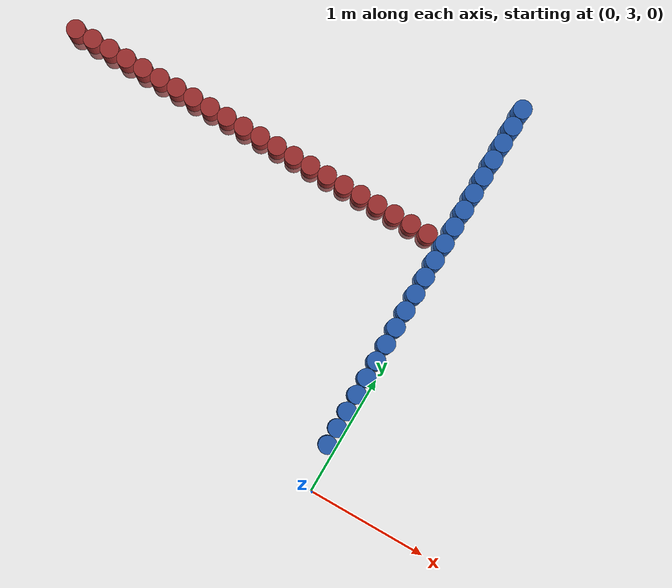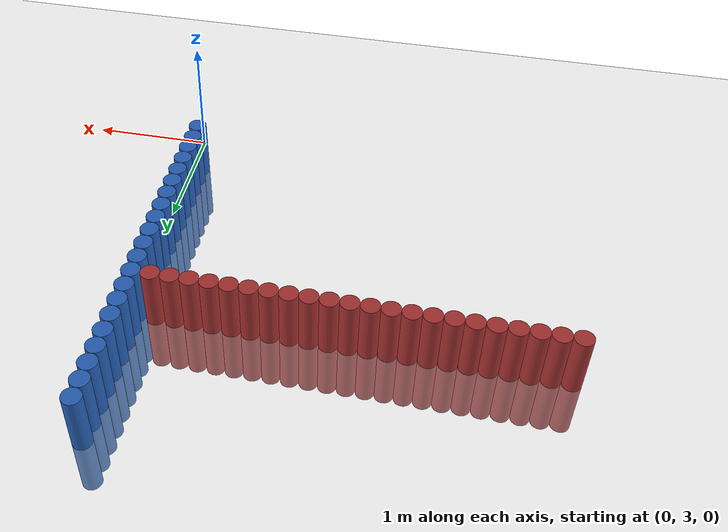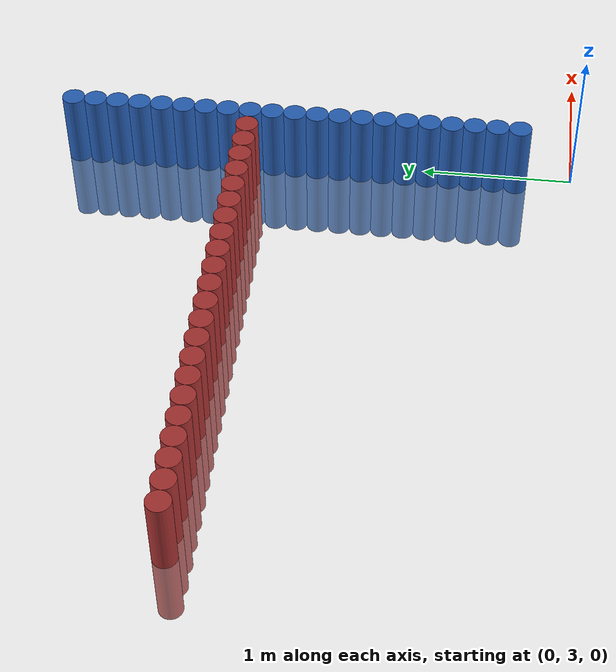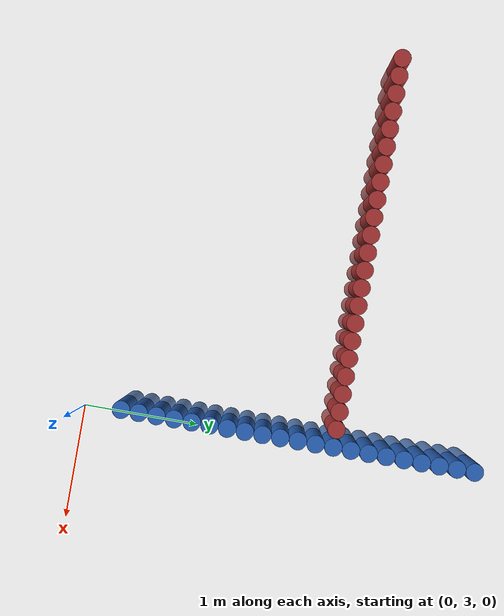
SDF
<sdf version="1.6">
 <world name="default">
  <model name="ground_plane">
   <static>1</static>
   <link name="link">
    <collision name="collision">
     <geometry><plane><normal>0 0 1</normal><size>100 100</size></plane></geometry>
     <surface><friction><ode><mu>100</mu><mu2>50</mu2></ode></friction></surface>
    </collision>
    <visual name="visual">
     <cast_shadows>0</cast_shadows>
     <geometry><plane><normal>0 0 1</normal><size>100 100</size></plane></geometry>
     <material>
      <script><uri>file://media/materials/scripts/gazebo.material</uri><name>Gazebo/Grey</name></script>
     </material>
    </visual>
   </link>
  </model>
  <model name="unit_cylinder_101">
   <static>1</static>
   <pose>-0.075000 3.375000 0.000000 0.000000 0.000000 0.000000</pose>
   <link name="link">
    <inertial>
     <mass>1</mass>
     <inertia><ixx>0.145833</ixx><ixy>0</ixy><ixz>0</ixz><iyy>0.145833</iyy><iyz>0</iyz><izz>0.125</izz></inertia>
    </inertial>
    <collision name="collision">
     <geometry><cylinder><radius>0.075000</radius><length>1</length></cylinder></geometry>
    </collision>
    <visual name="visual">
     <geometry><cylinder><radius>0.075000</radius><length>1</length></cylinder></geometry>
     <material>
      <ambient>0.152000 0.379000 0.720000 1</ambient>
      <diffuse>0.152000 0.379000 0.720000 1</diffuse>
     </material>
     <material>
      <script><name>Gazebo/Grey</name><uri>file://media/materials/scripts/gazebo.material</uri></script>
     </material>
    </visual>
   </link>
  </model>
  <model name="unit_cylinder_103">
   <static>1</static>
   <pose>-0.075000 3.525000 0.000000 0.000000 0.000000 0.000000</pose>
   <link name="link">
    <inertial>
     <mass>1</mass>
     <inertia><ixx>0.145833</ixx><ixy>0</ixy><ixz>0</ixz><iyy>0.145833</iyy><iyz>0</iyz><izz>0.125</izz></inertia>
    </inertial>
    <collision name="collision">
     <geometry><cylinder><radius>0.075000</radius><length>1</length></cylinder></geometry>
    </collision>
    <visual name="visual">
     <geometry><cylinder><radius>0.075000</radius><length>1</length></cylinder></geometry>
     <material>
      <ambient>0.152000 0.379000 0.720000 1</ambient>
      <diffuse>0.152000 0.379000 0.720000 1</diffuse>
     </material>
     <material>
      <script><name>Gazebo/Grey</name><uri>file://media/materials/scripts/gazebo.material</uri></script>
     </material>
    </visual>
   </link>
  </model>
  <model name="unit_cylinder_105">
   <static>1</static>
   <pose>-0.075000 3.675000 0.000000 0.000000 0.000000 0.000000</pose>
   <link name="link">
    <inertial>
     <mass>1</mass>
     <inertia><ixx>0.145833</ixx><ixy>0</ixy><ixz>0</ixz><iyy>0.145833</iyy><iyz>0</iyz><izz>0.125</izz></inertia>
    </inertial>
    <collision name="collision">
     <geometry><cylinder><radius>0.075000</radius><length>1</length></cylinder></geometry>
    </collision>
    <visual name="visual">
     <geometry><cylinder><radius>0.075000</radius><length>1</length></cylinder></geometry>
     <material>
      <ambient>0.152000 0.379000 0.720000 1</ambient>
      <diffuse>0.152000 0.379000 0.720000 1</diffuse>
     </material>
     <material>
      <script><name>Gazebo/Grey</name><uri>file://media/materials/scripts/gazebo.material</uri></script>
     </material>
    </visual>
   </link>
  </model>
  <model name="unit_cylinder_107">
   <static>1</static>
   <pose>-0.075000 3.825000 0.000000 0.000000 0.000000 0.000000</pose>
   <link name="link">
    <inertial>
     <mass>1</mass>
     <inertia><ixx>0.145833</ixx><ixy>0</ixy><ixz>0</ixz><iyy>0.145833</iyy><iyz>0</iyz><izz>0.125</izz></inertia>
    </inertial>
    <collision name="collision">
     <geometry><cylinder><radius>0.075000</radius><length>1</length></cylinder></geometry>
    </collision>
    <visual name="visual">
     <geometry><cylinder><radius>0.075000</radius><length>1</length></cylinder></geometry>
     <material>
      <ambient>0.152000 0.379000 0.720000 1</ambient>
      <diffuse>0.152000 0.379000 0.720000 1</diffuse>
     </material>
     <material>
      <script><name>Gazebo/Grey</name><uri>file://media/materials/scripts/gazebo.material</uri></script>
     </material>
    </visual>
   </link>
  </model>
  <model name="unit_cylinder_109">
   <static>1</static>
   <pose>-0.075000 3.975000 0.000000 0.000000 0.000000 0.000000</pose>
   <link name="link">
    <inertial>
     <mass>1</mass>
     <inertia><ixx>0.145833</ixx><ixy>0</ixy><ixz>0</ixz><iyy>0.145833</iyy><iyz>0</iyz><izz>0.125</izz></inertia>
    </inertial>
    <collision name="collision">
     <geometry><cylinder><radius>0.075000</radius><length>1</length></cylinder></geometry>
    </collision>
    <visual name="visual">
     <geometry><cylinder><radius>0.075000</radius><length>1</length></cylinder></geometry>
     <material>
      <ambient>0.152000 0.379000 0.720000 1</ambient>
      <diffuse>0.152000 0.379000 0.720000 1</diffuse>
     </material>
     <material>
      <script><name>Gazebo/Grey</name><uri>file://media/materials/scripts/gazebo.material</uri></script>
     </material>
    </visual>
   </link>
  </model>
  <model name="unit_cylinder_111">
   <static>1</static>
   <pose>-0.075000 4.125000 0.000000 0.000000 0.000000 0.000000</pose>
   <link name="link">
    <inertial>
     <mass>1</mass>
     <inertia><ixx>0.145833</ixx><ixy>0</ixy><ixz>0</ixz><iyy>0.145833</iyy><iyz>0</iyz><izz>0.125</izz></inertia>
    </inertial>
    <collision name="collision">
     <geometry><cylinder><radius>0.075000</radius><length>1</length></cylinder></geometry>
    </collision>
    <visual name="visual">
     <geometry><cylinder><radius>0.075000</radius><length>1</length></cylinder></geometry>
     <material>
      <ambient>0.152000 0.379000 0.720000 1</ambient>
      <diffuse>0.152000 0.379000 0.720000 1</diffuse>
     </material>
     <material>
      <script><name>Gazebo/Grey</name><uri>file://media/materials/scripts/gazebo.material</uri></script>
     </material>
    </visual>
   </link>
  </model>
  <model name="unit_cylinder_113">
   <static>1</static>
   <pose>-0.075000 4.275000 0.000000 0.000000 0.000000 0.000000</pose>
   <link name="link">
    <inertial>
     <mass>1</mass>
     <inertia><ixx>0.145833</ixx><ixy>0</ixy><ixz>0</ixz><iyy>0.145833</iyy><iyz>0</iyz><izz>0.125</izz></inertia>
    </inertial>
    <collision name="collision">
     <geometry><cylinder><radius>0.075000</radius><length>1</length></cylinder></geometry>
    </collision>
    <visual name="visual">
     <geometry><cylinder><radius>0.075000</radius><length>1</length></cylinder></geometry>
     <material>
      <ambient>0.152000 0.379000 0.720000 1</ambient>
      <diffuse>0.152000 0.379000 0.720000 1</diffuse>
     </material>
     <material>
      <script><name>Gazebo/Grey</name><uri>file://media/materials/scripts/gazebo.material</uri></script>
     </material>
    </visual>
   </link>
  </model>
  <model name="unit_cylinder_115">
   <static>1</static>
   <pose>-0.075000 4.425000 0.000000 0.000000 0.000000 0.000000</pose>
   <link name="link">
    <inertial>
     <mass>1</mass>
     <inertia><ixx>0.145833</ixx><ixy>0</ixy><ixz>0</ixz><iyy>0.145833</iyy><iyz>0</iyz><izz>0.125</izz></inertia>
    </inertial>
    <collision name="collision">
     <geometry><cylinder><radius>0.075000</radius><length>1</length></cylinder></geometry>
    </collision>
    <visual name="visual">
     <geometry><cylinder><radius>0.075000</radius><length>1</length></cylinder></geometry>
     <material>
      <ambient>0.152000 0.379000 0.720000 1</ambient>
      <diffuse>0.152000 0.379000 0.720000 1</diffuse>
     </material>
     <material>
      <script><name>Gazebo/Grey</name><uri>file://media/materials/scripts/gazebo.material</uri></script>
     </material>
    </visual>
   </link>
  </model>
  <model name="unit_cylinder_117">
   <static>1</static>
   <pose>-0.075000 4.575000 0.000000 0.000000 0.000000 0.000000</pose>
   <link name="link">
    <inertial>
     <mass>1</mass>
     <inertia><ixx>0.145833</ixx><ixy>0</ixy><ixz>0</ixz><iyy>0.145833</iyy><iyz>0</iyz><izz>0.125</izz></inertia>
    </inertial>
    <collision name="collision">
     <geometry><cylinder><radius>0.075000</radius><length>1</length></cylinder></geometry>
    </collision>
    <visual name="visual">
     <geometry><cylinder><radius>0.075000</radius><length>1</length></cylinder></geometry>
     <material>
      <ambient>0.152000 0.379000 0.720000 1</ambient>
      <diffuse>0.152000 0.379000 0.720000 1</diffuse>
     </material>
     <material>
      <script><name>Gazebo/Grey</name><uri>file://media/materials/scripts/gazebo.material</uri></script>
     </material>
    </visual>
   </link>
  </model>
  <model name="unit_cylinder_119">
   <static>1</static>
   <pose>-0.075000 4.725000 0.000000 0.000000 0.000000 0.000000</pose>
   <link name="link">
    <inertial>
     <mass>1</mass>
     <inertia><ixx>0.145833</ixx><ixy>0</ixy><ixz>0</ixz><iyy>0.145833</iyy><iyz>0</iyz><izz>0.125</izz></inertia>
    </inertial>
    <collision name="collision">
     <geometry><cylinder><radius>0.075000</radius><length>1</length></cylinder></geometry>
    </collision>
    <visual name="visual">
     <geometry><cylinder><radius>0.075000</radius><length>1</length></cylinder></geometry>
     <material>
      <ambient>0.152000 0.379000 0.720000 1</ambient>
      <diffuse>0.152000 0.379000 0.720000 1</diffuse>
     </material>
     <material>
      <script><name>Gazebo/Grey</name><uri>file://media/materials/scripts/gazebo.material</uri></script>
     </material>
    </visual>
   </link>
  </model>
  <model name="unit_cylinder_121">
   <static>1</static>
   <pose>-0.075000 4.875000 0.000000 0.000000 0.000000 0.000000</pose>
   <link name="link">
    <inertial>
     <mass>1</mass>
     <inertia><ixx>0.145833</ixx><ixy>0</ixy><ixz>0</ixz><iyy>0.145833</iyy><iyz>0</iyz><izz>0.125</izz></inertia>
    </inertial>
    <collision name="collision">
     <geometry><cylinder><radius>0.075000</radius><length>1</length></cylinder></geometry>
    </collision>
    <visual name="visual">
     <geometry><cylinder><radius>0.075000</radius><length>1</length></cylinder></geometry>
     <material>
      <ambient>0.152000 0.379000 0.720000 1</ambient>
      <diffuse>0.152000 0.379000 0.720000 1</diffuse>
     </material>
     <material>
      <script><name>Gazebo/Grey</name><uri>file://media/materials/scripts/gazebo.material</uri></script>
     </material>
    </visual>
   </link>
  </model>
  <model name="unit_cylinder_123">
   <static>1</static>
   <pose>-0.075000 5.025000 0.000000 0.000000 0.000000 0.000000</pose>
   <link name="link">
    <inertial>
     <mass>1</mass>
     <inertia><ixx>0.145833</ixx><ixy>0</ixy><ixz>0</ixz><iyy>0.145833</iyy><iyz>0</iyz><izz>0.125</izz></inertia>
    </inertial>
    <collision name="collision">
     <geometry><cylinder><radius>0.075000</radius><length>1</length></cylinder></geometry>
    </collision>
    <visual name="visual">
     <geometry><cylinder><radius>0.075000</radius><length>1</length></cylinder></geometry>
     <material>
      <ambient>0.152000 0.379000 0.720000 1</ambient>
      <diffuse>0.152000 0.379000 0.720000 1</diffuse>
     </material>
     <material>
      <script><name>Gazebo/Grey</name><uri>file://media/materials/scripts/gazebo.material</uri></script>
     </material>
    </visual>
   </link>
  </model>
  <model name="unit_cylinder_363">
   <static>1</static>
   <pose>-3.375000 5.175000 0.000000 0.000000 0.000000 0.000000</pose>
   <link name="link">
    <inertial>
     <mass>1</mass>
     <inertia><ixx>0.145833</ixx><ixy>0</ixy><ixz>0</ixz><iyy>0.145833</iyy><iyz>0</iyz><izz>0.125</izz></inertia>
    </inertial>
    <collision name="collision">
     <geometry><cylinder><radius>0.075000</radius><length>1</length></cylinder></geometry>
    </collision>
    <visual name="visual">
     <geometry><cylinder><radius>0.075000</radius><length>1</length></cylinder></geometry>
     <material>
      <ambient>0.648000 0.192000 0.192000 1</ambient>
      <diffuse>0.648000 0.192000 0.192000 1</diffuse>
     </material>
     <material>
      <script><name>Gazebo/Grey</name><uri>file://media/materials/scripts/gazebo.material</uri></script>
     </material>
    </visual>
   </link>
  </model>
  <model name="unit_cylinder_365">
   <static>1</static>
   <pose>-3.225000 5.175000 0.000000 0.000000 0.000000 0.000000</pose>
   <link name="link">
    <inertial>
     <mass>1</mass>
     <inertia><ixx>0.145833</ixx><ixy>0</ixy><ixz>0</ixz><iyy>0.145833</iyy><iyz>0</iyz><izz>0.125</izz></inertia>
    </inertial>
    <collision name="collision">
     <geometry><cylinder><radius>0.075000</radius><length>1</length></cylinder></geometry>
    </collision>
    <visual name="visual">
     <geometry><cylinder><radius>0.075000</radius><length>1</length></cylinder></geometry>
     <material>
      <ambient>0.648000 0.192000 0.192000 1</ambient>
      <diffuse>0.648000 0.192000 0.192000 1</diffuse>
     </material>
     <material>
      <script><name>Gazebo/Grey</name><uri>file://media/materials/scripts/gazebo.material</uri></script>
     </material>
    </visual>
   </link>
  </model>
  <model name="unit_cylinder_367">
   <static>1</static>
   <pose>-3.075000 5.175000 0.000000 0.000000 0.000000 0.000000</pose>
   <link name="link">
    <inertial>
     <mass>1</mass>
     <inertia><ixx>0.145833</ixx><ixy>0</ixy><ixz>0</ixz><iyy>0.145833</iyy><iyz>0</iyz><izz>0.125</izz></inertia>
    </inertial>
    <collision name="collision">
     <geometry><cylinder><radius>0.075000</radius><length>1</length></cylinder></geometry>
    </collision>
    <visual name="visual">
     <geometry><cylinder><radius>0.075000</radius><length>1</length></cylinder></geometry>
     <material>
      <ambient>0.648000 0.192000 0.192000 1</ambient>
      <diffuse>0.648000 0.192000 0.192000 1</diffuse>
     </material>
     <material>
      <script><name>Gazebo/Grey</name><uri>file://media/materials/scripts/gazebo.material</uri></script>
     </material>
    </visual>
   </link>
  </model>
  <model name="unit_cylinder_369">
   <static>1</static>
   <pose>-2.925000 5.175000 0.000000 0.000000 0.000000 0.000000</pose>
   <link name="link">
    <inertial>
     <mass>1</mass>
     <inertia><ixx>0.145833</ixx><ixy>0</ixy><ixz>0</ixz><iyy>0.145833</iyy><iyz>0</iyz><izz>0.125</izz></inertia>
    </inertial>
    <collision name="collision">
     <geometry><cylinder><radius>0.075000</radius><length>1</length></cylinder></geometry>
    </collision>
    <visual name="visual">
     <geometry><cylinder><radius>0.075000</radius><length>1</length></cylinder></geometry>
     <material>
      <ambient>0.648000 0.192000 0.192000 1</ambient>
      <diffuse>0.648000 0.192000 0.192000 1</diffuse>
     </material>
     <material>
      <script><name>Gazebo/Grey</name><uri>file://media/materials/scripts/gazebo.material</uri></script>
     </material>
    </visual>
   </link>
  </model>
  <model name="unit_cylinder_371">
   <static>1</static>
   <pose>-2.775000 5.175000 0.000000 0.000000 0.000000 0.000000</pose>
   <link name="link">
    <inertial>
     <mass>1</mass>
     <inertia><ixx>0.145833</ixx><ixy>0</ixy><ixz>0</ixz><iyy>0.145833</iyy><iyz>0</iyz><izz>0.125</izz></inertia>
    </inertial>
    <collision name="collision">
     <geometry><cylinder><radius>0.075000</radius><length>1</length></cylinder></geometry>
    </collision>
    <visual name="visual">
     <geometry><cylinder><radius>0.075000</radius><length>1</length></cylinder></geometry>
     <material>
      <ambient>0.648000 0.192000 0.192000 1</ambient>
      <diffuse>0.648000 0.192000 0.192000 1</diffuse>
     </material>
     <material>
      <script><name>Gazebo/Grey</name><uri>file://media/materials/scripts/gazebo.material</uri></script>
     </material>
    </visual>
   </link>
  </model>
  <model name="unit_cylinder_373">
   <static>1</static>
   <pose>-2.625000 5.175000 0.000000 0.000000 0.000000 0.000000</pose>
   <link name="link">
    <inertial>
     <mass>1</mass>
     <inertia><ixx>0.145833</ixx><ixy>0</ixy><ixz>0</ixz><iyy>0.145833</iyy><iyz>0</iyz><izz>0.125</izz></inertia>
    </inertial>
    <collision name="collision">
     <geometry><cylinder><radius>0.075000</radius><length>1</length></cylinder></geometry>
    </collision>
    <visual name="visual">
     <geometry><cylinder><radius>0.075000</radius><length>1</length></cylinder></geometry>
     <material>
      <ambient>0.648000 0.192000 0.192000 1</ambient>
      <diffuse>0.648000 0.192000 0.192000 1</diffuse>
     </material>
     <material>
      <script><name>Gazebo/Grey</name><uri>file://media/materials/scripts/gazebo.material</uri></script>
     </material>
    </visual>
   </link>
  </model>
  <model name="unit_cylinder_375">
   <static>1</static>
   <pose>-2.475000 5.175000 0.000000 0.000000 0.000000 0.000000</pose>
   <link name="link">
    <inertial>
     <mass>1</mass>
     <inertia><ixx>0.145833</ixx><ixy>0</ixy><ixz>0</ixz><iyy>0.145833</iyy><iyz>0</iyz><izz>0.125</izz></inertia>
    </inertial>
    <collision name="collision">
     <geometry><cylinder><radius>0.075000</radius><length>1</length></cylinder></geometry>
    </collision>
    <visual name="visual">
     <geometry><cylinder><radius>0.075000</radius><length>1</length></cylinder></geometry>
     <material>
      <ambient>0.648000 0.192000 0.192000 1</ambient>
      <diffuse>0.648000 0.192000 0.192000 1</diffuse>
     </material>
     <material>
      <script><name>Gazebo/Grey</name><uri>file://media/materials/scripts/gazebo.material</uri></script>
     </material>
    </visual>
   </link>
  </model>
  <model name="unit_cylinder_377">
   <static>1</static>
   <pose>-2.325000 5.175000 0.000000 0.000000 0.000000 0.000000</pose>
   <link name="link">
    <inertial>
     <mass>1</mass>
     <inertia><ixx>0.145833</ixx><ixy>0</ixy><ixz>0</ixz><iyy>0.145833</iyy><iyz>0</iyz><izz>0.125</izz></inertia>
    </inertial>
    <collision name="collision">
     <geometry><cylinder><radius>0.075000</radius><length>1</length></cylinder></geometry>
    </collision>
    <visual name="visual">
     <geometry><cylinder><radius>0.075000</radius><length>1</length></cylinder></geometry>
     <material>
      <ambient>0.648000 0.192000 0.192000 1</ambient>
      <diffuse>0.648000 0.192000 0.192000 1</diffuse>
     </material>
     <material>
      <script><name>Gazebo/Grey</name><uri>file://media/materials/scripts/gazebo.material</uri></script>
     </material>
    </visual>
   </link>
  </model>
  <model name="unit_cylinder_379">
   <static>1</static>
   <pose>-2.175000 5.175000 0.000000 0.000000 0.000000 0.000000</pose>
   <link name="link">
    <inertial>
     <mass>1</mass>
     <inertia><ixx>0.145833</ixx><ixy>0</ixy><ixz>0</ixz><iyy>0.145833</iyy><iyz>0</iyz><izz>0.125</izz></inertia>
    </inertial>
    <collision name="collision">
     <geometry><cylinder><radius>0.075000</radius><length>1</length></cylinder></geometry>
    </collision>
    <visual name="visual">
     <geometry><cylinder><radius>0.075000</radius><length>1</length></cylinder></geometry>
     <material>
      <ambient>0.648000 0.192000 0.192000 1</ambient>
      <diffuse>0.648000 0.192000 0.192000 1</diffuse>
     </material>
     <material>
      <script><name>Gazebo/Grey</name><uri>file://media/materials/scripts/gazebo.material</uri></script>
     </material>
    </visual>
   </link>
  </model>
  <model name="unit_cylinder_381">
   <static>1</static>
   <pose>-2.025000 5.175000 0.000000 0.000000 0.000000 0.000000</pose>
   <link name="link">
    <inertial>
     <mass>1</mass>
     <inertia><ixx>0.145833</ixx><ixy>0</ixy><ixz>0</ixz><iyy>0.145833</iyy><iyz>0</iyz><izz>0.125</izz></inertia>
    </inertial>
    <collision name="collision">
     <geometry><cylinder><radius>0.075000</radius><length>1</length></cylinder></geometry>
    </collision>
    <visual name="visual">
     <geometry><cylinder><radius>0.075000</radius><length>1</length></cylinder></geometry>
     <material>
      <ambient>0.648000 0.192000 0.192000 1</ambient>
      <diffuse>0.648000 0.192000 0.192000 1</diffuse>
     </material>
     <material>
      <script><name>Gazebo/Grey</name><uri>file://media/materials/scripts/gazebo.material</uri></script>
     </material>
    </visual>
   </link>
  </model>
  <model name="unit_cylinder_383">
   <static>1</static>
   <pose>-1.875000 5.175000 0.000000 0.000000 0.000000 0.000000</pose>
   <link name="link">
    <inertial>
     <mass>1</mass>
     <inertia><ixx>0.145833</ixx><ixy>0</ixy><ixz>0</ixz><iyy>0.145833</iyy><iyz>0</iyz><izz>0.125</izz></inertia>
    </inertial>
    <collision name="collision">
     <geometry><cylinder><radius>0.075000</radius><length>1</length></cylinder></geometry>
    </collision>
    <visual name="visual">
     <geometry><cylinder><radius>0.075000</radius><length>1</length></cylinder></geometry>
     <material>
      <ambient>0.648000 0.192000 0.192000 1</ambient>
      <diffuse>0.648000 0.192000 0.192000 1</diffuse>
     </material>
     <material>
      <script><name>Gazebo/Grey</name><uri>file://media/materials/scripts/gazebo.material</uri></script>
     </material>
    </visual>
   </link>
  </model>
  <model name="unit_cylinder_385">
   <static>1</static>
   <pose>-1.725000 5.175000 0.000000 0.000000 0.000000 0.000000</pose>
   <link name="link">
    <inertial>
     <mass>1</mass>
     <inertia><ixx>0.145833</ixx><ixy>0</ixy><ixz>0</ixz><iyy>0.145833</iyy><iyz>0</iyz><izz>0.125</izz></inertia>
    </inertial>
    <collision name="collision">
     <geometry><cylinder><radius>0.075000</radius><length>1</length></cylinder></geometry>
    </collision>
    <visual name="visual">
     <geometry><cylinder><radius>0.075000</radius><length>1</length></cylinder></geometry>
     <material>
      <ambient>0.648000 0.192000 0.192000 1</ambient>
      <diffuse>0.648000 0.192000 0.192000 1</diffuse>
     </material>
     <material>
      <script><name>Gazebo/Grey</name><uri>file://media/materials/scripts/gazebo.material</uri></script>
     </material>
    </visual>
   </link>
  </model>
  <model name="unit_cylinder_387">
   <static>1</static>
   <pose>-1.575000 5.175000 0.000000 0.000000 0.000000 0.000000</pose>
   <link name="link">
    <inertial>
     <mass>1</mass>
     <inertia><ixx>0.145833</ixx><ixy>0</ixy><ixz>0</ixz><iyy>0.145833</iyy><iyz>0</iyz><izz>0.125</izz></inertia>
    </inertial>
    <collision name="collision">
     <geometry><cylinder><radius>0.075000</radius><length>1</length></cylinder></geometry>
    </collision>
    <visual name="visual">
     <geometry><cylinder><radius>0.075000</radius><length>1</length></cylinder></geometry>
     <material>
      <ambient>0.648000 0.192000 0.192000 1</ambient>
      <diffuse>0.648000 0.192000 0.192000 1</diffuse>
     </material>
     <material>
      <script><name>Gazebo/Grey</name><uri>file://media/materials/scripts/gazebo.material</uri></script>
     </material>
    </visual>
   </link>
  </model>
  <model name="unit_cylinder_389">
   <static>1</static>
   <pose>-1.425000 5.175000 0.000000 0.000000 0.000000 0.000000</pose>
   <link name="link">
    <inertial>
     <mass>1</mass>
     <inertia><ixx>0.145833</ixx><ixy>0</ixy><ixz>0</ixz><iyy>0.145833</iyy><iyz>0</iyz><izz>0.125</izz></inertia>
    </inertial>
    <collision name="collision">
     <geometry><cylinder><radius>0.075000</radius><length>1</length></cylinder></geometry>
    </collision>
    <visual name="visual">
     <geometry><cylinder><radius>0.075000</radius><length>1</length></cylinder></geometry>
     <material>
      <ambient>0.648000 0.192000 0.192000 1</ambient>
      <diffuse>0.648000 0.192000 0.192000 1</diffuse>
     </material>
     <material>
      <script><name>Gazebo/Grey</name><uri>file://media/materials/scripts/gazebo.material</uri></script>
     </material>
    </visual>
   </link>
  </model>
  <model name="unit_cylinder_391">
   <static>1</static>
   <pose>-1.275000 5.175000 0.000000 0.000000 0.000000 0.000000</pose>
   <link name="link">
    <inertial>
     <mass>1</mass>
     <inertia><ixx>0.145833</ixx><ixy>0</ixy><ixz>0</ixz><iyy>0.145833</iyy><iyz>0</iyz><izz>0.125</izz></inertia>
    </inertial>
    <collision name="collision">
     <geometry><cylinder><radius>0.075000</radius><length>1</length></cylinder></geometry>
    </collision>
    <visual name="visual">
     <geometry><cylinder><radius>0.075000</radius><length>1</length></cylinder></geometry>
     <material>
      <ambient>0.648000 0.192000 0.192000 1</ambient>
      <diffuse>0.648000 0.192000 0.192000 1</diffuse>
     </material>
     <material>
      <script><name>Gazebo/Grey</name><uri>file://media/materials/scripts/gazebo.material</uri></script>
     </material>
    </visual>
   </link>
  </model>
  <model name="unit_cylinder_393">
   <static>1</static>
   <pose>-1.125000 5.175000 0.000000 0.000000 0.000000 0.000000</pose>
   <link name="link">
    <inertial>
     <mass>1</mass>
     <inertia><ixx>0.145833</ixx><ixy>0</ixy><ixz>0</ixz><iyy>0.145833</iyy><iyz>0</iyz><izz>0.125</izz></inertia>
    </inertial>
    <collision name="collision">
     <geometry><cylinder><radius>0.075000</radius><length>1</length></cylinder></geometry>
    </collision>
    <visual name="visual">
     <geometry><cylinder><radius>0.075000</radius><length>1</length></cylinder></geometry>
     <material>
      <ambient>0.648000 0.192000 0.192000 1</ambient>
      <diffuse>0.648000 0.192000 0.192000 1</diffuse>
     </material>
     <material>
      <script><name>Gazebo/Grey</name><uri>file://media/materials/scripts/gazebo.material</uri></script>
     </material>
    </visual>
   </link>
  </model>
  <model name="unit_cylinder_395">
   <static>1</static>
   <pose>-0.975000 5.175000 0.000000 0.000000 0.000000 0.000000</pose>
   <link name="link">
    <inertial>
     <mass>1</mass>
     <inertia><ixx>0.145833</ixx><ixy>0</ixy><ixz>0</ixz><iyy>0.145833</iyy><iyz>0</iyz><izz>0.125</izz></inertia>
    </inertial>
    <collision name="collision">
     <geometry><cylinder><radius>0.075000</radius><length>1</length></cylinder></geometry>
    </collision>
    <visual name="visual">
     <geometry><cylinder><radius>0.075000</radius><length>1</length></cylinder></geometry>
     <material>
      <ambient>0.648000 0.192000 0.192000 1</ambient>
      <diffuse>0.648000 0.192000 0.192000 1</diffuse>
     </material>
     <material>
      <script><name>Gazebo/Grey</name><uri>file://media/materials/scripts/gazebo.material</uri></script>
     </material>
    </visual>
   </link>
  </model>
  <model name="unit_cylinder_397">
   <static>1</static>
   <pose>-0.825000 5.175000 0.000000 0.000000 0.000000 0.000000</pose>
   <link name="link">
    <inertial>
     <mass>1</mass>
     <inertia><ixx>0.145833</ixx><ixy>0</ixy><ixz>0</ixz><iyy>0.145833</iyy><iyz>0</iyz><izz>0.125</izz></inertia>
    </inertial>
    <collision name="collision">
     <geometry><cylinder><radius>0.075000</radius><length>1</length></cylinder></geometry>
    </collision>
    <visual name="visual">
     <geometry><cylinder><radius>0.075000</radius><length>1</length></cylinder></geometry>
     <material>
      <ambient>0.648000 0.192000 0.192000 1</ambient>
      <diffuse>0.648000 0.192000 0.192000 1</diffuse>
     </material>
     <material>
      <script><name>Gazebo/Grey</name><uri>file://media/materials/scripts/gazebo.material</uri></script>
     </material>
    </visual>
   </link>
  </model>
  <model name="unit_cylinder_399">
   <static>1</static>
   <pose>-0.675000 5.175000 0.000000 0.000000 0.000000 0.000000</pose>
   <link name="link">
    <inertial>
     <mass>1</mass>
     <inertia><ixx>0.145833</ixx><ixy>0</ixy><ixz>0</ixz><iyy>0.145833</iyy><iyz>0</iyz><izz>0.125</izz></inertia>
    </inertial>
    <collision name="collision">
     <geometry><cylinder><radius>0.075000</radius><length>1</length></cylinder></geometry>
    </collision>
    <visual name="visual">
     <geometry><cylinder><radius>0.075000</radius><length>1</length></cylinder></geometry>
     <material>
      <ambient>0.648000 0.192000 0.192000 1</ambient>
      <diffuse>0.648000 0.192000 0.192000 1</diffuse>
     </material>
     <material>
      <script><name>Gazebo/Grey</name><uri>file://media/materials/scripts/gazebo.material</uri></script>
     </material>
    </visual>
   </link>
  </model>
  <model name="unit_cylinder_401">
   <static>1</static>
   <pose>-0.525000 5.175000 0.000000 0.000000 0.000000 0.000000</pose>
   <link name="link">
    <inertial>
     <mass>1</mass>
     <inertia><ixx>0.145833</ixx><ixy>0</ixy><ixz>0</ixz><iyy>0.145833</iyy><iyz>0</iyz><izz>0.125</izz></inertia>
    </inertial>
    <collision name="collision">
     <geometry><cylinder><radius>0.075000</radius><length>1</length></cylinder></geometry>
    </collision>
    <visual name="visual">
     <geometry><cylinder><radius>0.075000</radius><length>1</length></cylinder></geometry>
     <material>
      <ambient>0.648000 0.192000 0.192000 1</ambient>
      <diffuse>0.648000 0.192000 0.192000 1</diffuse>
     </material>
     <material>
      <script><name>Gazebo/Grey</name><uri>file://media/materials/scripts/gazebo.material</uri></script>
     </material>
    </visual>
   </link>
  </model>
  <model name="unit_cylinder_403">
   <static>1</static>
   <pose>-0.375000 5.175000 0.000000 0.000000 0.000000 0.000000</pose>
   <link name="link">
    <inertial>
     <mass>1</mass>
     <inertia><ixx>0.145833</ixx><ixy>0</ixy><ixz>0</ixz><iyy>0.145833</iyy><iyz>0</iyz><izz>0.125</izz></inertia>
    </inertial>
    <collision name="collision">
     <geometry><cylinder><radius>0.075000</radius><length>1</length></cylinder></geometry>
    </collision>
    <visual name="visual">
     <geometry><cylinder><radius>0.075000</radius><length>1</length></cylinder></geometry>
     <material>
      <ambient>0.648000 0.192000 0.192000 1</ambient>
      <diffuse>0.648000 0.192000 0.192000 1</diffuse>
     </material>
     <material>
      <script><name>Gazebo/Grey</name><uri>file://media/materials/scripts/gazebo.material</uri></script>
     </material>
    </visual>
   </link>
  </model>
  <model name="unit_cylinder_405">
   <static>1</static>
   <pose>-0.225000 5.175000 0.000000 0.000000 0.000000 0.000000</pose>
   <link name="link">
    <inertial>
     <mass>1</mass>
     <inertia><ixx>0.145833</ixx><ixy>0</ixy><ixz>0</ixz><iyy>0.145833</iyy><iyz>0</iyz><izz>0.125</izz></inertia>
    </inertial>
    <collision name="collision">
     <geometry><cylinder><radius>0.075000</radius><length>1</length></cylinder></geometry>
    </collision>
    <visual name="visual">
     <geometry><cylinder><radius>0.075000</radius><length>1</length></cylinder></geometry>
     <material>
      <ambient>0.648000 0.192000 0.192000 1</ambient>
      <diffuse>0.648000 0.192000 0.192000 1</diffuse>
     </material>
     <material>
      <script><name>Gazebo/Grey</name><uri>file://media/materials/scripts/gazebo.material</uri></script>
     </material>
    </visual>
   </link>
  </model>
  <model name="unit_cylinder_407">
   <static>1</static>
   <pose>-0.075000 5.175000 0.000000 0.000000 0.000000 0.000000</pose>
   <link name="link">
    <inertial>
     <mass>1</mass>
     <inertia><ixx>0.145833</ixx><ixy>0</ixy><ixz>0</ixz><iyy>0.145833</iyy><iyz>0</iyz><izz>0.125</izz></inertia>
    </inertial>
    <collision name="collision">
     <geometry><cylinder><radius>0.075000</radius><length>1</length></cylinder></geometry>
    </collision>
    <visual name="visual">
     <geometry><cylinder><radius>0.075000</radius><length>1</length></cylinder></geometry>
     <material>
      <ambient>0.152000 0.379000 0.720000 1</ambient>
      <diffuse>0.152000 0.379000 0.720000 1</diffuse>
     </material>
     <material>
      <script><name>Gazebo/Grey</name><uri>file://media/materials/scripts/gazebo.material</uri></script>
     </material>
    </visual>
   </link>
  </model>
  <model name="unit_cylinder_408">
   <static>1</static>
   <pose>-0.075000 5.325000 0.000000 0.000000 0.000000 0.000000</pose>
   <link name="link">
    <inertial>
     <mass>1</mass>
     <inertia><ixx>0.145833</ixx><ixy>0</ixy><ixz>0</ixz><iyy>0.145833</iyy><iyz>0</iyz><izz>0.125</izz></inertia>
    </inertial>
    <collision name="collision">
     <geometry><cylinder><radius>0.075000</radius><length>1</length></cylinder></geometry>
    </collision>
    <visual name="visual">
     <geometry><cylinder><radius>0.075000</radius><length>1</length></cylinder></geometry>
     <material>
      <ambient>0.152000 0.379000 0.720000 1</ambient>
      <diffuse>0.152000 0.379000 0.720000 1</diffuse>
     </material>
     <material>
      <script><name>Gazebo/Grey</name><uri>file://media/materials/scripts/gazebo.material</uri></script>
     </material>
    </visual>
   </link>
  </model>
  <model name="unit_cylinder_409">
   <static>1</static>
   <pose>-0.075000 5.475000 0.000000 0.000000 0.000000 0.000000</pose>
   <link name="link">
    <inertial>
     <mass>1</mass>
     <inertia><ixx>0.145833</ixx><ixy>0</ixy><ixz>0</ixz><iyy>0.145833</iyy><iyz>0</iyz><izz>0.125</izz></inertia>
    </inertial>
    <collision name="collision">
     <geometry><cylinder><radius>0.075000</radius><length>1</length></cylinder></geometry>
    </collision>
    <visual name="visual">
     <geometry><cylinder><radius>0.075000</radius><length>1</length></cylinder></geometry>
     <material>
      <ambient>0.152000 0.379000 0.720000 1</ambient>
      <diffuse>0.152000 0.379000 0.720000 1</diffuse>
     </material>
     <material>
      <script><name>Gazebo/Grey</name><uri>file://media/materials/scripts/gazebo.material</uri></script>
     </material>
    </visual>
   </link>
  </model>
  <model name="unit_cylinder_410">
   <static>1</static>
   <pose>-0.075000 5.625000 0.000000 0.000000 0.000000 0.000000</pose>
   <link name="link">
    <inertial>
     <mass>1</mass>
     <inertia><ixx>0.145833</ixx><ixy>0</ixy><ixz>0</ixz><iyy>0.145833</iyy><iyz>0</iyz><izz>0.125</izz></inertia>
    </inertial>
    <collision name="collision">
     <geometry><cylinder><radius>0.075000</radius><length>1</length></cylinder></geometry>
    </collision>
    <visual name="visual">
     <geometry><cylinder><radius>0.075000</radius><length>1</length></cylinder></geometry>
     <material>
      <ambient>0.152000 0.379000 0.720000 1</ambient>
      <diffuse>0.152000 0.379000 0.720000 1</diffuse>
     </material>
     <material>
      <script><name>Gazebo/Grey</name><uri>file://media/materials/scripts/gazebo.material</uri></script>
     </material>
    </visual>
   </link>
  </model>
  <model name="unit_cylinder_411">
   <static>1</static>
   <pose>-0.075000 5.775000 0.000000 0.000000 0.000000 0.000000</pose>
   <link name="link">
    <inertial>
     <mass>1</mass>
     <inertia><ixx>0.145833</ixx><ixy>0</ixy><ixz>0</ixz><iyy>0.145833</iyy><iyz>0</iyz><izz>0.125</izz></inertia>
    </inertial>
    <collision name="collision">
     <geometry><cylinder><radius>0.075000</radius><length>1</length></cylinder></geometry>
    </collision>
    <visual name="visual">
     <geometry><cylinder><radius>0.075000</radius><length>1</length></cylinder></geometry>
     <material>
      <ambient>0.152000 0.379000 0.720000 1</ambient>
      <diffuse>0.152000 0.379000 0.720000 1</diffuse>
     </material>
     <material>
      <script><name>Gazebo/Grey</name><uri>file://media/materials/scripts/gazebo.material</uri></script>
     </material>
    </visual>
   </link>
  </model>
  <model name="unit_cylinder_412">
   <static>1</static>
   <pose>-0.075000 5.925000 0.000000 0.000000 0.000000 0.000000</pose>
   <link name="link">
    <inertial>
     <mass>1</mass>
     <inertia><ixx>0.145833</ixx><ixy>0</ixy><ixz>0</ixz><iyy>0.145833</iyy><iyz>0</iyz><izz>0.125</izz></inertia>
    </inertial>
    <collision name="collision">
     <geometry><cylinder><radius>0.075000</radius><length>1</length></cylinder></geometry>
    </collision>
    <visual name="visual">
     <geometry><cylinder><radius>0.075000</radius><length>1</length></cylinder></geometry>
     <material>
      <ambient>0.152000 0.379000 0.720000 1</ambient>
      <diffuse>0.152000 0.379000 0.720000 1</diffuse>
     </material>
     <material>
      <script><name>Gazebo/Grey</name><uri>file://media/materials/scripts/gazebo.material</uri></script>
     </material>
    </visual>
   </link>
  </model>
  <model name="unit_cylinder_413">
   <static>1</static>
   <pose>-0.075000 6.075000 0.000000 0.000000 0.000000 0.000000</pose>
   <link name="link">
    <inertial>
     <mass>1</mass>
     <inertia><ixx>0.145833</ixx><ixy>0</ixy><ixz>0</ixz><iyy>0.145833</iyy><iyz>0</iyz><izz>0.125</izz></inertia>
    </inertial>
    <collision name="collision">
     <geometry><cylinder><radius>0.075000</radius><length>1</length></cylinder></geometry>
    </collision>
    <visual name="visual">
     <geometry><cylinder><radius>0.075000</radius><length>1</length></cylinder></geometry>
     <material>
      <ambient>0.152000 0.379000 0.720000 1</ambient>
      <diffuse>0.152000 0.379000 0.720000 1</diffuse>
     </material>
     <material>
      <script><name>Gazebo/Grey</name><uri>file://media/materials/scripts/gazebo.material</uri></script>
     </material>
    </visual>
   </link>
  </model>
  <model name="unit_cylinder_414">
   <static>1</static>
   <pose>-0.075000 6.225000 0.000000 0.000000 0.000000 0.000000</pose>
   <link name="link">
    <inertial>
     <mass>1</mass>
     <inertia><ixx>0.145833</ixx><ixy>0</ixy><ixz>0</ixz><iyy>0.145833</iyy><iyz>0</iyz><izz>0.125</izz></inertia>
    </inertial>
    <collision name="collision">
     <geometry><cylinder><radius>0.075000</radius><length>1</length></cylinder></geometry>
    </collision>
    <visual name="visual">
     <geometry><cylinder><radius>0.075000</radius><length>1</length></cylinder></geometry>
     <material>
      <ambient>0.152000 0.379000 0.720000 1</ambient>
      <diffuse>0.152000 0.379000 0.720000 1</diffuse>
     </material>
     <material>
      <script><name>Gazebo/Grey</name><uri>file://media/materials/scripts/gazebo.material</uri></script>
     </material>
    </visual>
   </link>
  </model>
  <model name="unit_cylinder_415">
   <static>1</static>
   <pose>-0.075000 6.375000 0.000000 0.000000 0.000000 0.000000</pose>
   <link name="link">
    <inertial>
     <mass>1</mass>
     <inertia><ixx>0.145833</ixx><ixy>0</ixy><ixz>0</ixz><iyy>0.145833</iyy><iyz>0</iyz><izz>0.125</izz></inertia>
    </inertial>
    <collision name="collision">
     <geometry><cylinder><radius>0.075000</radius><length>1</length></cylinder></geometry>
    </collision>
    <visual name="visual">
     <geometry><cylinder><radius>0.075000</radius><length>1</length></cylinder></geometry>
     <material>
      <ambient>0.152000 0.379000 0.720000 1</ambient>
      <diffuse>0.152000 0.379000 0.720000 1</diffuse>
     </material>
     <material>
      <script><name>Gazebo/Grey</name><uri>file://media/materials/scripts/gazebo.material</uri></script>
     </material>
    </visual>
   </link>
  </model>
 </world>
</sdf>
